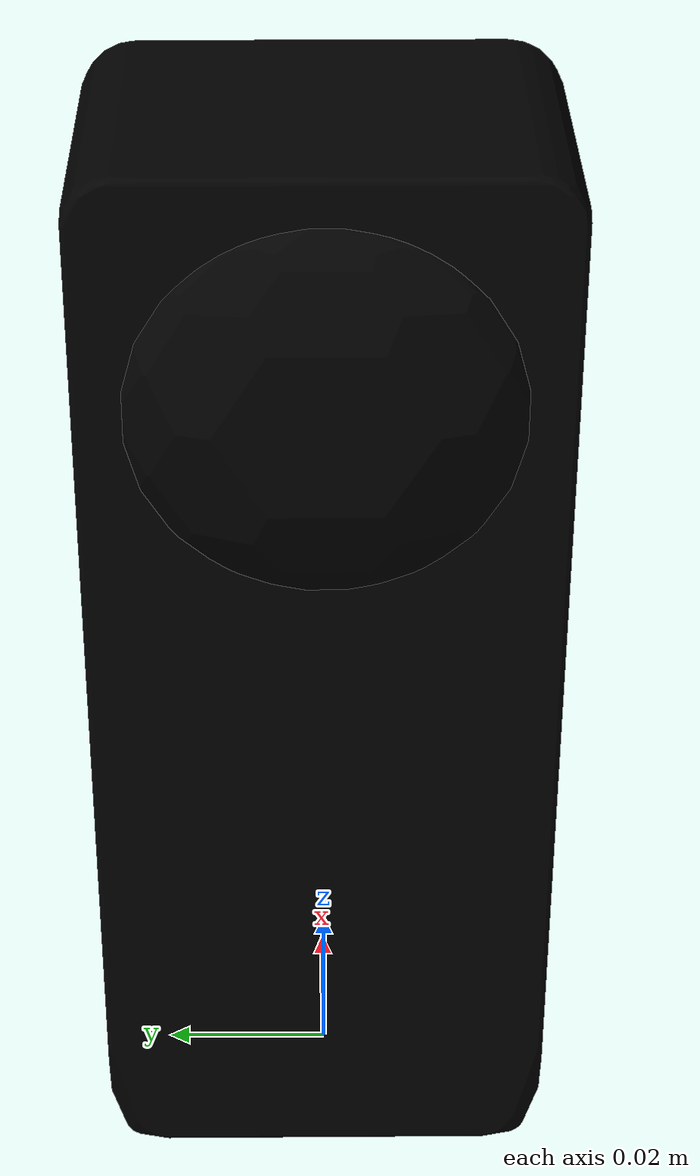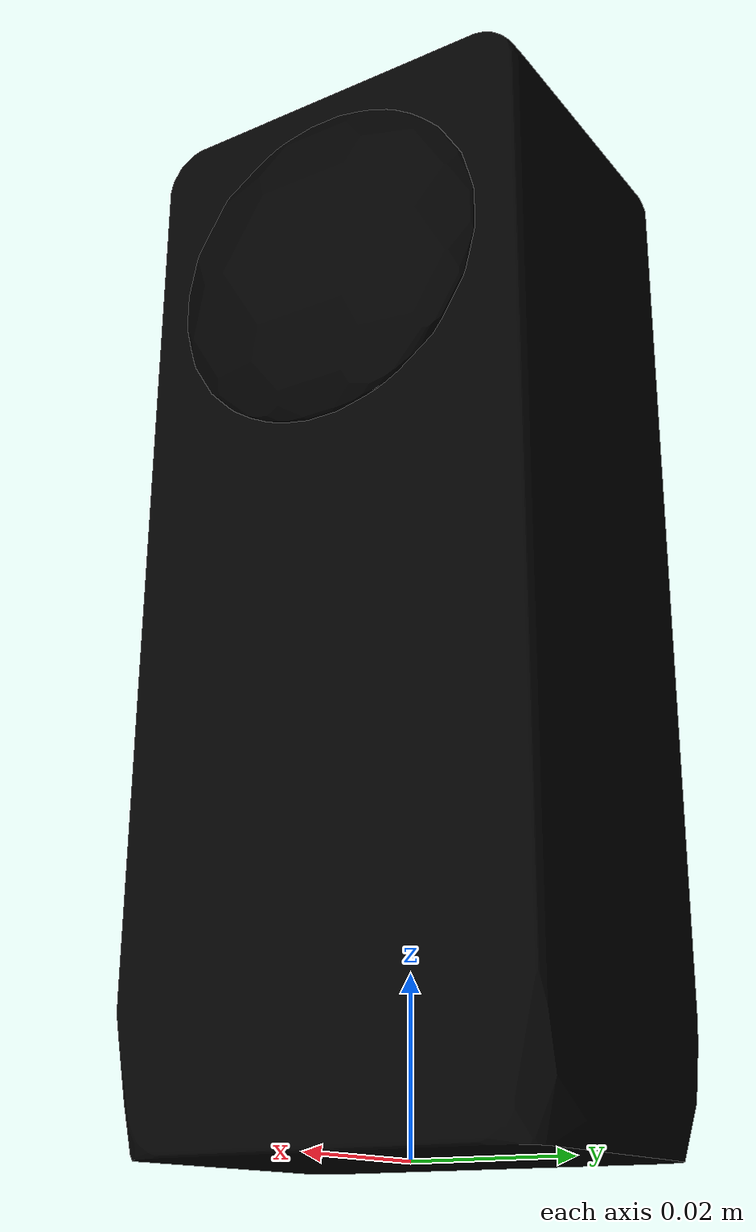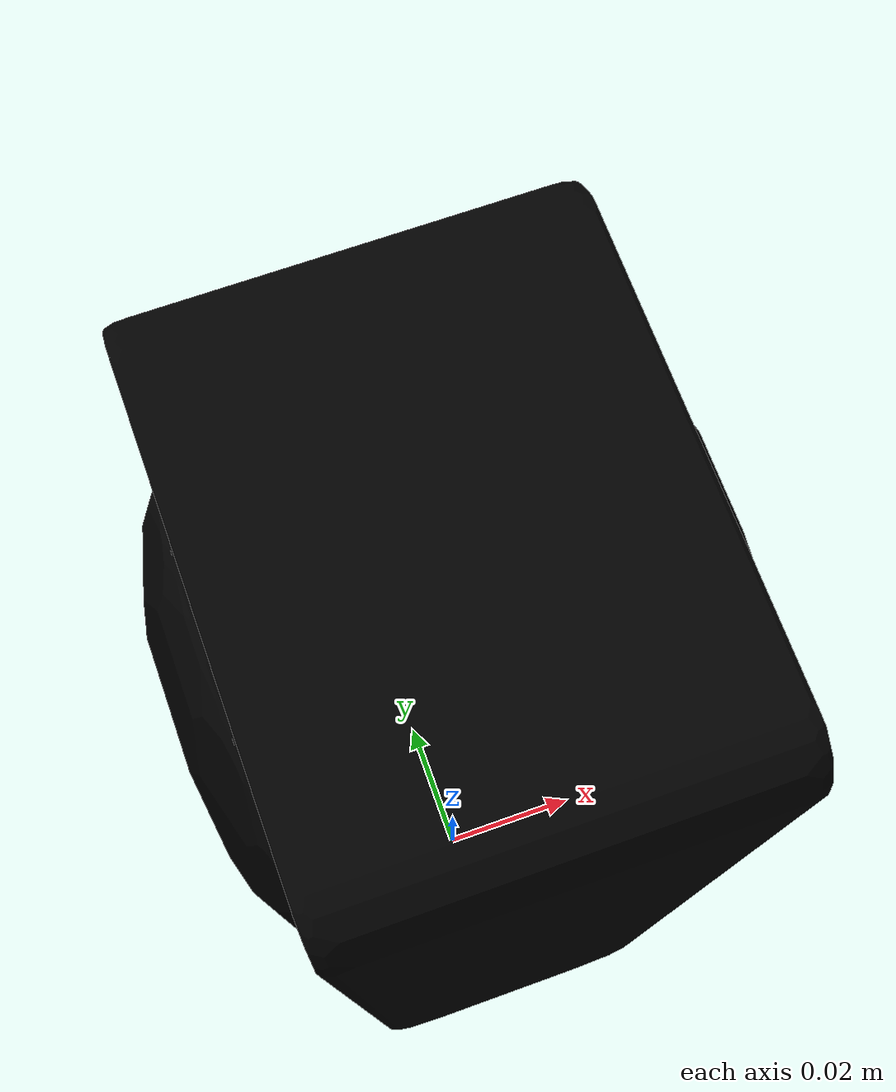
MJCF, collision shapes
<?xml version='1.0' encoding='utf-8'?>
<mujoco model="insta360_one_rs_1inch360">
  <!--Independent approximate geometry; fixed sites are geometric references, not calibrated optical frames.-->
  <compiler angle="radian" inertiafromgeom="false" strippath="false" />
  <option timestep="0.002" gravity="0 0 -9.81" />
  <asset>
    <mesh name="one_rs_1inch360_visual_mesh_0" file="../assets/meshes/visual/aperture.obj" scale="1 1 1" inertia="shell" />
    <mesh name="one_rs_1inch360_visual_mesh_1" file="../assets/meshes/visual/coating_edge.obj" scale="1 1 1" inertia="shell" />
    <mesh name="one_rs_1inch360_visual_mesh_2" file="../assets/meshes/visual/control.obj" scale="1 1 1" inertia="shell" />
    <mesh name="one_rs_1inch360_visual_mesh_3" file="../assets/meshes/visual/display_edge.obj" scale="1 1 1" inertia="shell" />
    <mesh name="one_rs_1inch360_visual_mesh_4" file="../assets/meshes/visual/glass_coating.obj" scale="1 1 1" inertia="shell" />
    <mesh name="one_rs_1inch360_visual_mesh_5" file="../assets/meshes/visual/glass_outer.obj" scale="1 1 1" inertia="shell" />
    <mesh name="one_rs_1inch360_visual_mesh_6" file="../assets/meshes/visual/grip_ridge.obj" scale="1 1 1" inertia="shell" />
    <mesh name="one_rs_1inch360_visual_mesh_7" file="../assets/meshes/visual/housing.obj" scale="1 1 1" inertia="shell" />
    <mesh name="one_rs_1inch360_visual_mesh_8" file="../assets/meshes/visual/housing_face.obj" scale="1 1 1" inertia="shell" />
    <mesh name="one_rs_1inch360_visual_mesh_9" file="../assets/meshes/visual/housing_lens_head.obj" scale="1 1 1" inertia="shell" />
    <mesh name="one_rs_1inch360_visual_mesh_10" file="../assets/meshes/visual/lens_barrel.obj" scale="1 1 1" inertia="shell" />
    <mesh name="one_rs_1inch360_visual_mesh_11" file="../assets/meshes/visual/lens_ring.obj" scale="1 1 1" inertia="shell" />
    <mesh name="one_rs_1inch360_visual_mesh_12" file="../assets/meshes/visual/marking.obj" scale="1 1 1" inertia="shell" />
    <mesh name="one_rs_1inch360_visual_mesh_13" file="../assets/meshes/visual/marking_dark.obj" scale="1 1 1" inertia="shell" />
    <mesh name="one_rs_1inch360_visual_mesh_14" file="../assets/meshes/visual/marking_dim.obj" scale="1 1 1" inertia="shell" />
    <mesh name="one_rs_1inch360_visual_mesh_15" file="../assets/meshes/visual/mount_metal.obj" scale="1 1 1" inertia="shell" />
    <mesh name="one_rs_1inch360_visual_mesh_16" file="../assets/meshes/visual/optical_glass.obj" scale="1 1 1" inertia="shell" />
    <mesh name="one_rs_1inch360_visual_mesh_17" file="../assets/meshes/visual/record_red.obj" scale="1 1 1" inertia="shell" />
    <mesh name="one_rs_1inch360_visual_mesh_18" file="../assets/meshes/visual/rubber.obj" scale="1 1 1" inertia="shell" />
    <mesh name="one_rs_1inch360_visual_mesh_19" file="../assets/meshes/visual/screen.obj" scale="1 1 1" inertia="shell" />
    <mesh name="one_rs_1inch360_visual_mesh_20" file="../assets/meshes/visual/seam.obj" scale="1 1 1" inertia="shell" />
    <mesh name="one_rs_1inch360_collision_mesh_0" file="../assets/meshes/collision/body.stl" scale="1 1 1" inertia="convex" />
    <mesh name="one_rs_1inch360_collision_mesh_1" file="../assets/meshes/collision/front_lens.stl" scale="1 1 1" inertia="convex" />
    <mesh name="one_rs_1inch360_collision_mesh_2" file="../assets/meshes/collision/rear_lens.stl" scale="1 1 1" inertia="convex" />
  </asset>
  <worldbody>
    <body name="one_rs_1inch360_link">
      <inertial pos="0 0 0.06465" mass="0.239" diaginertia="0.000389345539167 0.000381777405 0.000105169759167" quat="1 0 0 0" />
      <geom name="one_rs_1inch360_visual_0" type="mesh" mesh="one_rs_1inch360_visual_mesh_0" pos="0 0 0" quat="1 0 0 0" density="0" group="2" contype="0" conaffinity="0" rgba="0.006 0.008 0.012 1" />
      <geom name="one_rs_1inch360_visual_1" type="mesh" mesh="one_rs_1inch360_visual_mesh_1" pos="0 0 0" quat="1 0 0 0" density="0" group="2" contype="0" conaffinity="0" rgba="0.075 0.09 0.12 1" />
      <geom name="one_rs_1inch360_visual_2" type="mesh" mesh="one_rs_1inch360_visual_mesh_2" pos="0 0 0" quat="1 0 0 0" density="0" group="2" contype="0" conaffinity="0" rgba="0.13 0.14 0.155 1" />
      <geom name="one_rs_1inch360_visual_3" type="mesh" mesh="one_rs_1inch360_visual_mesh_3" pos="0 0 0" quat="1 0 0 0" density="0" group="2" contype="0" conaffinity="0" rgba="0.115 0.126 0.144 1" />
      <geom name="one_rs_1inch360_visual_4" type="mesh" mesh="one_rs_1inch360_visual_mesh_4" pos="0 0 0" quat="1 0 0 0" density="0" group="2" contype="0" conaffinity="0" rgba="0.025 0.047 0.04 1" />
      <geom name="one_rs_1inch360_visual_5" type="mesh" mesh="one_rs_1inch360_visual_mesh_5" pos="0 0 0" quat="1 0 0 0" density="0" group="2" contype="0" conaffinity="0" rgba="0.035 0.045 0.058 1" />
      <geom name="one_rs_1inch360_visual_6" type="mesh" mesh="one_rs_1inch360_visual_mesh_6" pos="0 0 0" quat="1 0 0 0" density="0" group="2" contype="0" conaffinity="0" rgba="0.077 0.084 0.094 1" />
      <geom name="one_rs_1inch360_visual_7" type="mesh" mesh="one_rs_1inch360_visual_mesh_7" pos="0 0 0" quat="1 0 0 0" density="0" group="2" contype="0" conaffinity="0" rgba="0.115 0.12 0.132 1" />
      <geom name="one_rs_1inch360_visual_8" type="mesh" mesh="one_rs_1inch360_visual_mesh_8" pos="0 0 0" quat="1 0 0 0" density="0" group="2" contype="0" conaffinity="0" rgba="0.092 0.099 0.108 1" />
      <geom name="one_rs_1inch360_visual_9" type="mesh" mesh="one_rs_1inch360_visual_mesh_9" pos="0 0 0" quat="1 0 0 0" density="0" group="2" contype="0" conaffinity="0" rgba="0.19 0.2 0.22 1" />
      <geom name="one_rs_1inch360_visual_10" type="mesh" mesh="one_rs_1inch360_visual_mesh_10" pos="0 0 0" quat="1 0 0 0" density="0" group="2" contype="0" conaffinity="0" rgba="0.06 0.068 0.078 1" />
      <geom name="one_rs_1inch360_visual_11" type="mesh" mesh="one_rs_1inch360_visual_mesh_11" pos="0 0 0" quat="1 0 0 0" density="0" group="2" contype="0" conaffinity="0" rgba="0.19 0.205 0.225 1" />
      <geom name="one_rs_1inch360_visual_12" type="mesh" mesh="one_rs_1inch360_visual_mesh_12" pos="0 0 0" quat="1 0 0 0" density="0" group="2" contype="0" conaffinity="0" rgba="0.72 0.73 0.75 1" />
      <geom name="one_rs_1inch360_visual_13" type="mesh" mesh="one_rs_1inch360_visual_mesh_13" pos="0 0 0" quat="1 0 0 0" density="0" group="2" contype="0" conaffinity="0" rgba="0.45 0.46 0.48 1" />
      <geom name="one_rs_1inch360_visual_14" type="mesh" mesh="one_rs_1inch360_visual_mesh_14" pos="0 0 0" quat="1 0 0 0" density="0" group="2" contype="0" conaffinity="0" rgba="0.4 0.42 0.45 1" />
      <geom name="one_rs_1inch360_visual_15" type="mesh" mesh="one_rs_1inch360_visual_mesh_15" pos="0 0 0" quat="1 0 0 0" density="0" group="2" contype="0" conaffinity="0" rgba="0.27 0.285 0.31 1" />
      <geom name="one_rs_1inch360_visual_16" type="mesh" mesh="one_rs_1inch360_visual_mesh_16" pos="0 0 0" quat="1 0 0 0" density="0" group="2" contype="0" conaffinity="0" rgba="0.008 0.014 0.02 1" />
      <geom name="one_rs_1inch360_visual_17" type="mesh" mesh="one_rs_1inch360_visual_mesh_17" pos="0 0 0" quat="1 0 0 0" density="0" group="2" contype="0" conaffinity="0" rgba="0.57 0.032 0.048 1" />
      <geom name="one_rs_1inch360_visual_18" type="mesh" mesh="one_rs_1inch360_visual_mesh_18" pos="0 0 0" quat="1 0 0 0" density="0" group="2" contype="0" conaffinity="0" rgba="0.065 0.075 0.085 1" />
      <geom name="one_rs_1inch360_visual_19" type="mesh" mesh="one_rs_1inch360_visual_mesh_19" pos="0 0 0" quat="1 0 0 0" density="0" group="2" contype="0" conaffinity="0" rgba="0.015 0.019 0.027 1" />
      <geom name="one_rs_1inch360_visual_20" type="mesh" mesh="one_rs_1inch360_visual_mesh_20" pos="0 0 0" quat="1 0 0 0" density="0" group="2" contype="0" conaffinity="0" rgba="0.025 0.03 0.035 1" />
      <geom name="one_rs_1inch360_collision_0" type="mesh" mesh="one_rs_1inch360_collision_mesh_0" pos="0 0 0" quat="1 0 0 0" density="0" group="3" contype="1" conaffinity="1" rgba="0 0 0 0" />
      <geom name="one_rs_1inch360_collision_1" type="mesh" mesh="one_rs_1inch360_collision_mesh_1" pos="0 0 0" quat="1 0 0 0" density="0" group="3" contype="1" conaffinity="1" rgba="0 0 0 0" />
      <geom name="one_rs_1inch360_collision_2" type="mesh" mesh="one_rs_1inch360_collision_mesh_2" pos="0 0 0" quat="1 0 0 0" density="0" group="3" contype="1" conaffinity="1" rgba="0 0 0 0" />
      <site name="one_rs_1inch360_mount" pos="0 0 0" quat="1 0 0 0" type="sphere" size="0.001" group="4" rgba="0 0 0 0" />
      <site name="one_rs_1inch360_rear_lens_surface" pos="-0.02475 0 0.1031814" quat="0.500000000002 -0.5 -0.499999999998 0.5" type="sphere" size="0.001" group="4" rgba="0 0 0 0" />
      <site name="one_rs_1inch360_front_lens_surface" pos="0.02475 0 0.1031814" quat="0.500000000002 -0.5 0.499999999998 -0.5" type="sphere" size="0.001" group="4" rgba="0 0 0 0" />
    </body>
  </worldbody>
</mujoco>
